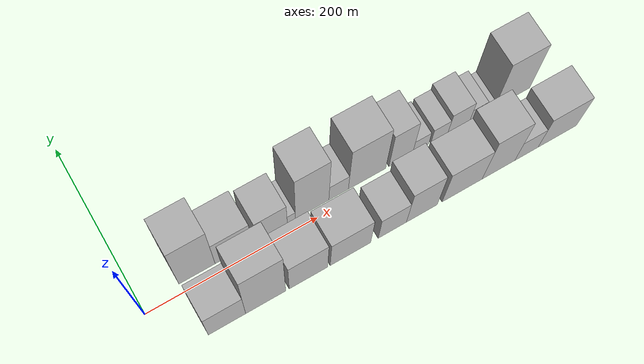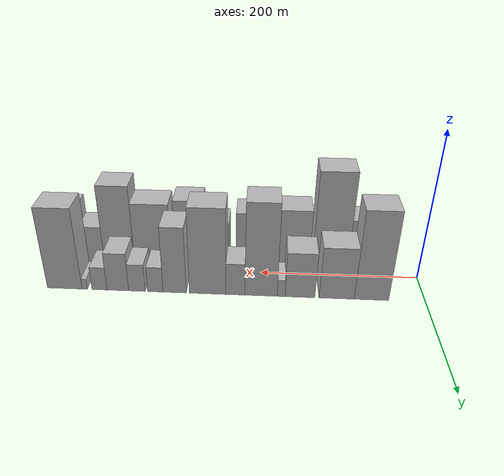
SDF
<sdf version="1.6">
 <world name="default">
  <scene>
   <sky><clouds><speed>12</speed></clouds></sky>
   <ambient>0.4 0.4 0.4 1</ambient>
   <background>0.7 0.7 0.7 1</background>
   <shadows>1</shadows>
  </scene>
  <gravity>0 0 -9.8066</gravity>
  <magnetic_field>6e-06 2.3e-05 -4.2e-05</magnetic_field>
  <physics default="0" name="default_physics" type="ode">
   <ode>
    <solver>
     <type>quick</type>
     <iters>10</iters>
     <sor>1.0</sor>
     <use_dynamic_moi_rescaling>0</use_dynamic_moi_rescaling>
    </solver>
    <constraints>
     <cfm>0</cfm>
     <erp>0.2</erp>
     <contact_max_correcting_vel>100</contact_max_correcting_vel>
     <contact_surface_layer>0.001</contact_surface_layer>
    </constraints>
   </ode>
   <max_step_size>0.004</max_step_size>
   <real_time_factor>1</real_time_factor>
   <real_time_update_rate>250</real_time_update_rate>
  </physics>
  <light name="sun" type="directional">
   <pose>0 0 10 0 0 0</pose>
   <diffuse>0.8 0.8 0.8 1</diffuse>
   <specular>0.2 0.2 0.2 1</specular>
   <attenuation>
    <range>1000</range>
    <constant>0.9</constant>
    <linear>0.01</linear>
    <quadratic>0.001</quadratic>
   </attenuation>
   <direction>-0.5 0.1 -0.9</direction>
  </light>
  <model name="building_1">
   <static>1</static>
   <pose>64.8131 30.0000 0 0.000000 0.000000 1.570796</pose>
   <link name="link">
    <pose>0 0 61.50 0 0 0</pose>
    <collision name="collision"><geometry><box><size>40.0000 41.6261 123.0000</size></box></geometry></collision>
    <visual name="visual">
     <cast_shadows>0</cast_shadows>
     <geometry><box><size>40.0000 41.6261 123.0000</size></box></geometry>
     <material>
      <script>
       <uri>model://HANNAS_wall/materials/scripts</uri>
       <uri>model://HANNAS_wall/materials/textures</uri>
       <name>vrc/HANNAS_wall</name>
      </script>
     </material>
    </visual>
   </link>
  </model>
  <model name="building_2">
   <static>1</static>
   <pose>106.8738 30.0000 0 0.000000 0.000000 1.570796</pose>
   <link name="link">
    <pose>0 0 36.00 0 0 0</pose>
    <collision name="collision"><geometry><box><size>40.0000 42.4953 72.0000</size></box></geometry></collision>
    <visual name="visual">
     <cast_shadows>0</cast_shadows>
     <geometry><box><size>40.0000 42.4953 72.0000</size></box></geometry>
     <material>
      <script>
       <uri>model://HANNAS_wall/materials/scripts</uri>
       <uri>model://HANNAS_wall/materials/textures</uri>
       <name>vrc/HANNAS_wall</name>
      </script>
     </material>
    </visual>
   </link>
  </model>
  <model name="building_3">
   <static>1</static>
   <pose>151.3565 30.0000 0 0.000000 0.000000 1.570796</pose>
   <link name="link">
    <pose>0 0 31.50 0 0 0</pose>
    <collision name="collision"><geometry><box><size>40.0000 36.4702 63.0000</size></box></geometry></collision>
    <visual name="visual">
     <cast_shadows>0</cast_shadows>
     <geometry><box><size>40.0000 36.4702 63.0000</size></box></geometry>
     <material>
      <script>
       <uri>model://HANNAS_wall/materials/scripts</uri>
       <uri>model://HANNAS_wall/materials/textures</uri>
       <name>vrc/HANNAS_wall</name>
      </script>
     </material>
    </visual>
   </link>
  </model>
  <model name="building_4">
   <static>1</static>
   <pose>174.4170 30.0000 0 0.000000 0.000000 1.570796</pose>
   <link name="link">
    <pose>0 0 12.00 0 0 0</pose>
    <collision name="collision"><geometry><box><size>40.0000 9.6508 24.0000</size></box></geometry></collision>
    <visual name="visual">
     <cast_shadows>0</cast_shadows>
     <geometry><box><size>40.0000 9.6508 24.0000</size></box></geometry>
     <material>
      <script>
       <uri>model://HANNAS_wall/materials/scripts</uri>
       <uri>model://HANNAS_wall/materials/textures</uri>
       <name>vrc/HANNAS_wall</name>
      </script>
     </material>
    </visual>
   </link>
  </model>
  <model name="building_5">
   <static>1</static>
   <pose>199.0616 30.0000 0 0.000000 0.000000 1.570796</pose>
   <link name="link">
    <pose>0 0 64.50 0 0 0</pose>
    <collision name="collision"><geometry><box><size>40.0000 39.6384 129.0000</size></box></geometry></collision>
    <visual name="visual">
     <cast_shadows>0</cast_shadows>
     <geometry><box><size>40.0000 39.6384 129.0000</size></box></geometry>
     <material>
      <script>
       <uri>model://HANNAS_wall/materials/scripts</uri>
       <uri>model://HANNAS_wall/materials/textures</uri>
       <name>vrc/HANNAS_wall</name>
      </script>
     </material>
    </visual>
   </link>
  </model>
  <model name="building_6">
   <static>1</static>
   <pose>230.5316 30.0000 0 0.000000 0.000000 1.570796</pose>
   <link name="link">
    <pose>0 0 22.50 0 0 0</pose>
    <collision name="collision"><geometry><box><size>40.0000 23.3015 45.0000</size></box></geometry></collision>
    <visual name="visual">
     <cast_shadows>0</cast_shadows>
     <geometry><box><size>40.0000 23.3015 45.0000</size></box></geometry>
     <material>
      <script>
       <uri>model://HANNAS_wall/materials/scripts</uri>
       <uri>model://HANNAS_wall/materials/textures</uri>
       <name>vrc/HANNAS_wall</name>
      </script>
     </material>
    </visual>
   </link>
  </model>
  <model name="building_7">
   <static>1</static>
   <pose>264.7214 30.0000 0 0.000000 0.000000 1.570796</pose>
   <link name="link">
    <pose>0 0 60.00 0 0 0</pose>
    <collision name="collision"><geometry><box><size>40.0000 45.0781 120.0000</size></box></geometry></collision>
    <visual name="visual">
     <cast_shadows>0</cast_shadows>
     <geometry><box><size>40.0000 45.0781 120.0000</size></box></geometry>
     <material>
      <script>
       <uri>model://HANNAS_wall/materials/scripts</uri>
       <uri>model://HANNAS_wall/materials/textures</uri>
       <name>vrc/HANNAS_wall</name>
      </script>
     </material>
    </visual>
   </link>
  </model>
  <model name="building_8">
   <static>1</static>
   <pose>305.6282 30.0000 0 0.000000 0.000000 1.570796</pose>
   <link name="link">
    <pose>0 0 46.50 0 0 0</pose>
    <collision name="collision"><geometry><box><size>40.0000 28.7355 93.0000</size></box></geometry></collision>
    <visual name="visual">
     <cast_shadows>0</cast_shadows>
     <geometry><box><size>40.0000 28.7355 93.0000</size></box></geometry>
     <material>
      <script>
       <uri>model://HANNAS_wall/materials/scripts</uri>
       <uri>model://HANNAS_wall/materials/textures</uri>
       <name>vrc/HANNAS_wall</name>
      </script>
     </material>
    </visual>
   </link>
  </model>
  <model name="building_9">
   <static>1</static>
   <pose>329.7105 30.0000 0 0.000000 0.000000 1.570796</pose>
   <link name="link">
    <pose>0 0 18.00 0 0 0</pose>
    <collision name="collision"><geometry><box><size>40.0000 19.4291 36.0000</size></box></geometry></collision>
    <visual name="visual">
     <cast_shadows>0</cast_shadows>
     <geometry><box><size>40.0000 19.4291 36.0000</size></box></geometry>
     <material>
      <script>
       <uri>model://HANNAS_wall/materials/scripts</uri>
       <uri>model://HANNAS_wall/materials/textures</uri>
       <name>vrc/HANNAS_wall</name>
      </script>
     </material>
    </visual>
   </link>
  </model>
  <model name="building_10">
   <static>1</static>
   <pose>352.7230 30.0000 0 0.000000 0.000000 1.570796</pose>
   <link name="link">
    <pose>0 0 19.50 0 0 0</pose>
    <collision name="collision"><geometry><box><size>40.0000 20.5959 39.0000</size></box></geometry></collision>
    <visual name="visual">
     <cast_shadows>0</cast_shadows>
     <geometry><box><size>40.0000 20.5959 39.0000</size></box></geometry>
     <material>
      <script>
       <uri>model://HANNAS_wall/materials/scripts</uri>
       <uri>model://HANNAS_wall/materials/textures</uri>
       <name>vrc/HANNAS_wall</name>
      </script>
     </material>
    </visual>
   </link>
  </model>
  <model name="building_11">
   <static>1</static>
   <pose>376.6512 30.0000 0 0.000000 0.000000 1.570796</pose>
   <link name="link">
    <pose>0 0 27.00 0 0 0</pose>
    <collision name="collision"><geometry><box><size>40.0000 27.2604 54.0000</size></box></geometry></collision>
    <visual name="visual">
     <cast_shadows>0</cast_shadows>
     <geometry><box><size>40.0000 27.2604 54.0000</size></box></geometry>
     <material>
      <script>
       <uri>model://HANNAS_wall/materials/scripts</uri>
       <uri>model://HANNAS_wall/materials/textures</uri>
       <name>vrc/HANNAS_wall</name>
      </script>
     </material>
    </visual>
   </link>
  </model>
  <model name="building_12">
   <static>1</static>
   <pose>399.7596 30.0000 0 0.000000 0.000000 1.570796</pose>
   <link name="link">
    <pose>0 0 16.50 0 0 0</pose>
    <collision name="collision"><geometry><box><size>40.0000 18.9564 33.0000</size></box></geometry></collision>
    <visual name="visual">
     <cast_shadows>0</cast_shadows>
     <geometry><box><size>40.0000 18.9564 33.0000</size></box></geometry>
     <material>
      <script>
       <uri>model://HANNAS_wall/materials/scripts</uri>
       <uri>model://HANNAS_wall/materials/textures</uri>
       <name>vrc/HANNAS_wall</name>
      </script>
     </material>
    </visual>
   </link>
  </model>
  <model name="building_13">
   <static>1</static>
   <pose>418.4947 30.0000 0 0.000000 0.000000 1.570796</pose>
   <link name="link">
    <pose>0 0 7.50 0 0 0</pose>
    <collision name="collision"><geometry><box><size>40.0000 6.5139 15.0000</size></box></geometry></collision>
    <visual name="visual">
     <cast_shadows>0</cast_shadows>
     <geometry><box><size>40.0000 6.5139 15.0000</size></box></geometry>
     <material>
      <script>
       <uri>model://HANNAS_wall/materials/scripts</uri>
       <uri>model://HANNAS_wall/materials/textures</uri>
       <name>vrc/HANNAS_wall</name>
      </script>
     </material>
    </visual>
   </link>
  </model>
  <model name="building_14">
   <static>1</static>
   <pose>443.7280 30.0000 0 0.000000 0.000000 1.570796</pose>
   <link name="link">
    <pose>0 0 57.00 0 0 0</pose>
    <collision name="collision"><geometry><box><size>40.0000 43.9526 114.0000</size></box></geometry></collision>
    <visual name="visual">
     <cast_shadows>0</cast_shadows>
     <geometry><box><size>40.0000 43.9526 114.0000</size></box></geometry>
     <material>
      <script>
       <uri>model://HANNAS_wall/materials/scripts</uri>
       <uri>model://HANNAS_wall/materials/textures</uri>
       <name>vrc/HANNAS_wall</name>
      </script>
     </material>
    </visual>
   </link>
  </model>
  <model name="building_15">
   <static>1</static>
   <pose>66.2486 -30.0000 0 0.000000 0.000000 1.570796</pose>
   <link name="link">
    <pose>0 0 37.50 0 0 0</pose>
    <collision name="collision"><geometry><box><size>40.0000 42.4973 75.0000</size></box></geometry></collision>
    <visual name="visual">
     <cast_shadows>0</cast_shadows>
     <geometry><box><size>40.0000 42.4973 75.0000</size></box></geometry>
     <material>
      <script>
       <uri>model://HANNAS_wall/materials/scripts</uri>
       <uri>model://HANNAS_wall/materials/textures</uri>
       <name>vrc/HANNAS_wall</name>
      </script>
     </material>
    </visual>
   </link>
  </model>
  <model name="building_16">
   <static>1</static>
   <pose>110.5010 -30.0000 0 0.000000 0.000000 1.570796</pose>
   <link name="link">
    <pose>0 0 70.50 0 0 0</pose>
    <collision name="collision"><geometry><box><size>40.0000 46.0074 141.0000</size></box></geometry></collision>
    <visual name="visual">
     <cast_shadows>0</cast_shadows>
     <geometry><box><size>40.0000 46.0074 141.0000</size></box></geometry>
     <material>
      <script>
       <uri>model://HANNAS_wall/materials/scripts</uri>
       <uri>model://HANNAS_wall/materials/textures</uri>
       <name>vrc/HANNAS_wall</name>
      </script>
     </material>
    </visual>
   </link>
  </model>
  <model name="building_17">
   <static>1</static>
   <pose>159.8700 -30.0000 0 0.000000 0.000000 1.570796</pose>
   <link name="link">
    <pose>0 0 43.50 0 0 0</pose>
    <collision name="collision"><geometry><box><size>40.0000 44.7305 87.0000</size></box></geometry></collision>
    <visual name="visual">
     <cast_shadows>0</cast_shadows>
     <geometry><box><size>40.0000 44.7305 87.0000</size></box></geometry>
     <material>
      <script>
       <uri>model://HANNAS_wall/materials/scripts</uri>
       <uri>model://HANNAS_wall/materials/textures</uri>
       <name>vrc/HANNAS_wall</name>
      </script>
     </material>
    </visual>
   </link>
  </model>
  <model name="building_18">
   <static>1</static>
   <pose>209.0879 -30.0000 0 0.000000 0.000000 1.570796</pose>
   <link name="link">
    <pose>0 0 40.50 0 0 0</pose>
    <collision name="collision"><geometry><box><size>40.0000 47.7055 81.0000</size></box></geometry></collision>
    <visual name="visual">
     <cast_shadows>0</cast_shadows>
     <geometry><box><size>40.0000 47.7055 81.0000</size></box></geometry>
     <material>
      <script>
       <uri>model://HANNAS_wall/materials/scripts</uri>
       <uri>model://HANNAS_wall/materials/textures</uri>
       <name>vrc/HANNAS_wall</name>
      </script>
     </material>
    </visual>
   </link>
  </model>
  <model name="building_19">
   <static>1</static>
   <pose>258.7349 -30.0000 0 0.000000 0.000000 1.570796</pose>
   <link name="link">
    <pose>0 0 33.00 0 0 0</pose>
    <collision name="collision"><geometry><box><size>40.0000 33.5884 66.0000</size></box></geometry></collision>
    <visual name="visual">
     <cast_shadows>0</cast_shadows>
     <geometry><box><size>40.0000 33.5884 66.0000</size></box></geometry>
     <material>
      <script>
       <uri>model://HANNAS_wall/materials/scripts</uri>
       <uri>model://HANNAS_wall/materials/textures</uri>
       <name>vrc/HANNAS_wall</name>
      </script>
     </material>
    </visual>
   </link>
  </model>
  <model name="building_20">
   <static>1</static>
   <pose>294.1428 -30.0000 0 0.000000 0.000000 1.570796</pose>
   <link name="link">
    <pose>0 0 48.00 0 0 0</pose>
    <collision name="collision"><geometry><box><size>40.0000 37.2274 96.0000</size></box></geometry></collision>
    <visual name="visual">
     <cast_shadows>0</cast_shadows>
     <geometry><box><size>40.0000 37.2274 96.0000</size></box></geometry>
     <material>
      <script>
       <uri>model://HANNAS_wall/materials/scripts</uri>
       <uri>model://HANNAS_wall/materials/textures</uri>
       <name>vrc/HANNAS_wall</name>
      </script>
     </material>
    </visual>
   </link>
  </model>
  <model name="building_21">
   <static>1</static>
   <pose>342.9894 -30.0000 0 0.000000 0.000000 1.570796</pose>
   <link name="link">
    <pose>0 0 45.00 0 0 0</pose>
    <collision name="collision"><geometry><box><size>40.0000 48.4659 90.0000</size></box></geometry></collision>
    <visual name="visual">
     <cast_shadows>0</cast_shadows>
     <geometry><box><size>40.0000 48.4659 90.0000</size></box></geometry>
     <material>
      <script>
       <uri>model://HANNAS_wall/materials/scripts</uri>
       <uri>model://HANNAS_wall/materials/textures</uri>
       <name>vrc/HANNAS_wall</name>
      </script>
     </material>
    </visual>
   </link>
  </model>
  <model name="building_22">
   <static>1</static>
   <pose>387.5618 -30.0000 0 0.000000 0.000000 1.570796</pose>
   <link name="link">
    <pose>0 0 57.00 0 0 0</pose>
    <collision name="collision"><geometry><box><size>40.0000 40.6789 114.0000</size></box></geometry></collision>
    <visual name="visual">
     <cast_shadows>0</cast_shadows>
     <geometry><box><size>40.0000 40.6789 114.0000</size></box></geometry>
     <material>
      <script>
       <uri>model://HANNAS_wall/materials/scripts</uri>
       <uri>model://HANNAS_wall/materials/textures</uri>
       <name>vrc/HANNAS_wall</name>
      </script>
     </material>
    </visual>
   </link>
  </model>
  <model name="building_23">
   <static>1</static>
   <pose>422.3232 -30.0000 0 0.000000 0.000000 1.570796</pose>
   <link name="link">
    <pose>0 0 27.00 0 0 0</pose>
    <collision name="collision"><geometry><box><size>40.0000 28.8439 54.0000</size></box></geometry></collision>
    <visual name="visual">
     <cast_shadows>0</cast_shadows>
     <geometry><box><size>40.0000 28.8439 54.0000</size></box></geometry>
     <material>
      <script>
       <uri>model://HANNAS_wall/materials/scripts</uri>
       <uri>model://HANNAS_wall/materials/textures</uri>
       <name>vrc/HANNAS_wall</name>
      </script>
     </material>
    </visual>
   </link>
  </model>
  <model name="building_24">
   <static>1</static>
   <pose>460.8884 -30.0000 0 0.000000 0.000000 1.570796</pose>
   <link name="link">
    <pose>0 0 40.50 0 0 0</pose>
    <collision name="collision"><geometry><box><size>40.0000 48.2864 81.0000</size></box></geometry></collision>
    <visual name="visual">
     <cast_shadows>0</cast_shadows>
     <geometry><box><size>40.0000 48.2864 81.0000</size></box></geometry>
     <material>
      <script>
       <uri>model://HANNAS_wall/materials/scripts</uri>
       <uri>model://HANNAS_wall/materials/textures</uri>
       <name>vrc/HANNAS_wall</name>
      </script>
     </material>
    </visual>
   </link>
  </model>
 </world>
</sdf>
